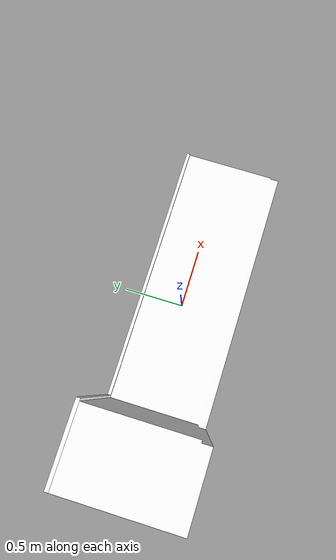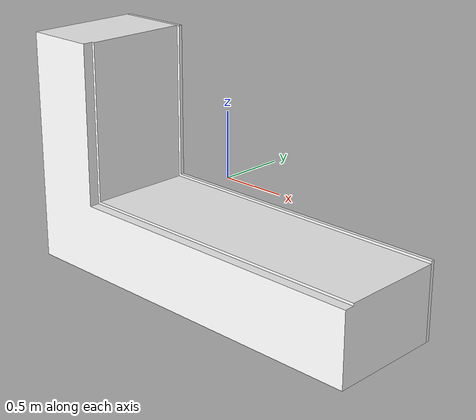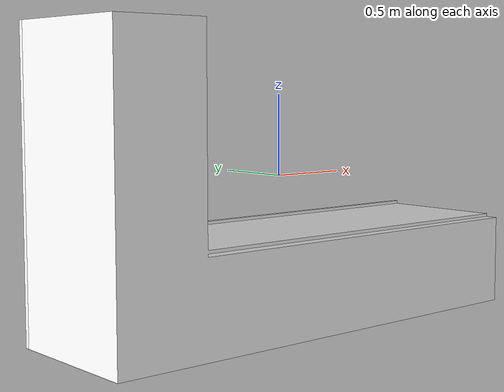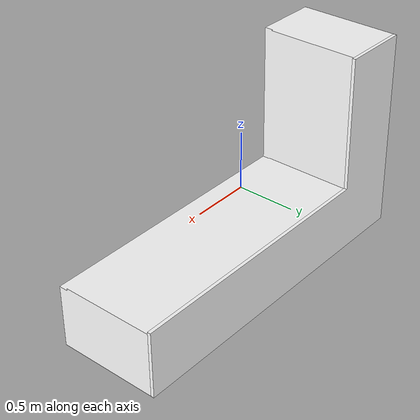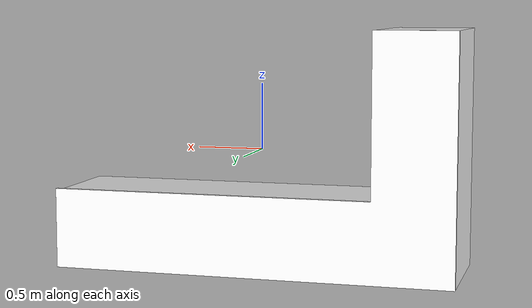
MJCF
<mujoco model="Countertop_L_10x6">
  <default>
    <default class="visual">
      <geom group="2" type="mesh" contype="0" conaffinity="0"/>
    </default>
    <default class="collision">
      <geom group="3" type="mesh"/>
    </default>
  </default>
  <asset>
    <material name="marbleBase2" specular="0.5" shininess="0.5" rgba="1 1 1 1.0"/>
    <material name="DarkWood2" specular="0.5" shininess="0.5" rgba="1 1 1 1.0"/>
    <mesh file="Countertop_L_10x6_0.obj"/>
    <mesh file="Countertop_L_10x6_1.obj"/>
    <mesh file="Countertop_L_10x6_collision_0.obj"/>
    <mesh file="Countertop_L_10x6_collision_1.obj"/>
  </asset>
  <worldbody>
    <body name="Countertop_L_10x6">
      <geom mesh="Countertop_L_10x6_0" material="DarkWood2" class="visual"/>
      <geom mesh="Countertop_L_10x6_1" material="marbleBase2" class="visual"/>
      <geom mesh="Countertop_L_10x6_collision_0" rgba="0.4283072075012101 0.7265718097983931 0.8650400773606974 1" class="collision"/>
      <geom mesh="Countertop_L_10x6_collision_1" rgba="0.5539201256654193 0.29157500594792385 0.4349546146699611 1" class="collision"/>
    </body>
  </worldbody>
</mujoco>
